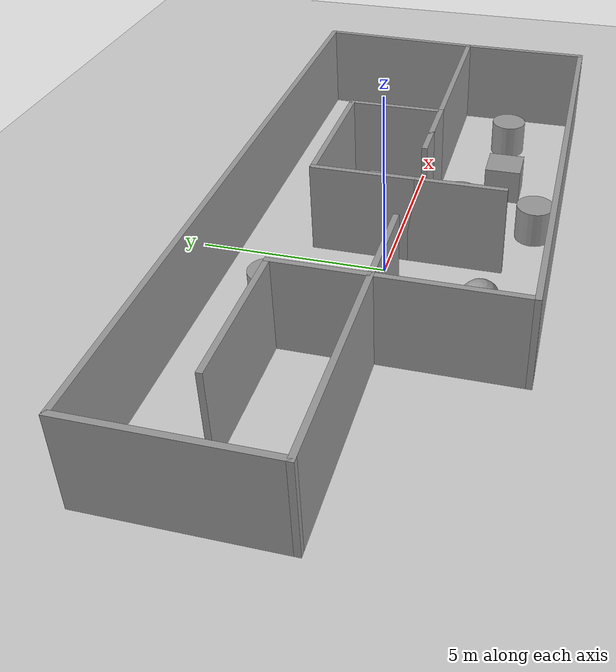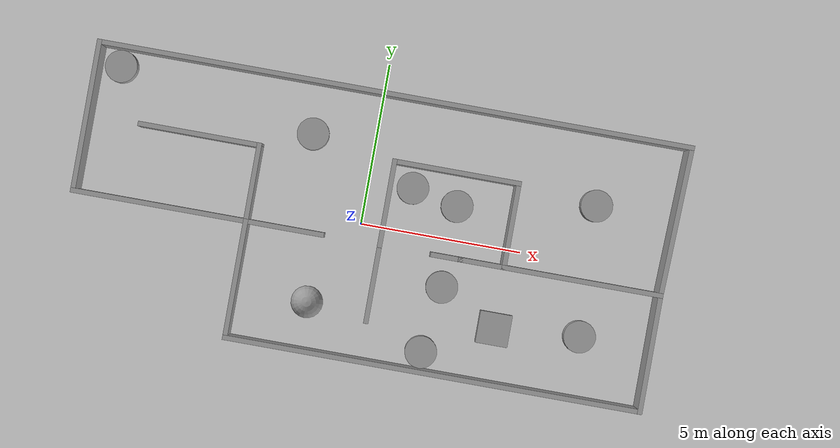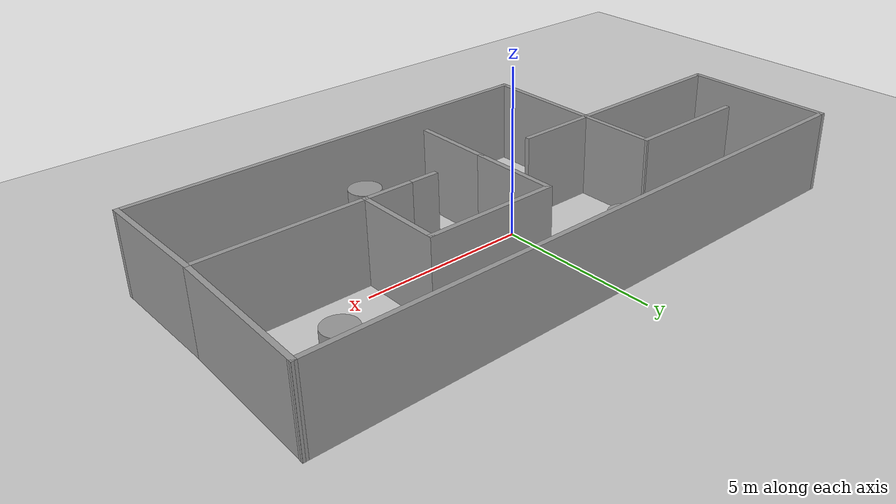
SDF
<sdf version="1.7">
 <world name="default">
  <light name="sun" type="directional">
   <pose>0 0 10 0 -0 0</pose>
   <diffuse>0.8 0.8 0.8 1</diffuse>
   <specular>0.2 0.2 0.2 1</specular>
   <attenuation>
    <range>1000</range>
    <constant>0.9</constant>
    <linear>0.01</linear>
    <quadratic>0.001</quadratic>
   </attenuation>
   <direction>-0.5 0.1 -0.9</direction>
   <spot><inner_angle>0</inner_angle><outer_angle>0</outer_angle><falloff>0</falloff></spot>
  </light>
  <model name="ground_plane">
   <static>1</static>
   <link name="link">
    <collision name="collision">
     <geometry><plane><normal>0 0 1</normal><size>100 100</size></plane></geometry>
     <surface><friction><ode><mu>100</mu><mu2>50</mu2></ode></friction></surface>
    </collision>
    <visual name="visual">
     <cast_shadows>0</cast_shadows>
     <geometry><plane><normal>0 0 1</normal><size>100 100</size></plane></geometry>
     <material>
      <script><uri>file://media/materials/scripts/gazebo.material</uri><name>Gazebo/Grey</name></script>
     </material>
    </visual>
   </link>
  </model>
  <gravity>0 0 -9.8</gravity>
  <magnetic_field>6e-06 2.3e-05 -4.2e-05</magnetic_field>
  <atmosphere type="adiabatic"/>
  <physics type="ode">
   <max_step_size>0.001</max_step_size>
   <real_time_factor>1</real_time_factor>
   <real_time_update_rate>1000</real_time_update_rate>
  </physics>
  <scene><ambient>0.4 0.4 0.4 1</ambient><background>0.7 0.7 0.7 1</background><shadows>1</shadows></scene>
  <audio><device>default</device></audio>
  <spherical_coordinates>
   <surface_model>EARTH_WGS84</surface_model>
   <latitude_deg>0</latitude_deg>
   <longitude_deg>0</longitude_deg>
   <elevation>0</elevation>
   <heading_deg>0</heading_deg>
  </spherical_coordinates>
  <model name="MapaSimulare">
   <pose>0.3499 -0.036899 0 0 -0 0</pose>
   <link name="Wall_0">
    <collision name="Wall_0_Collision">
     <geometry><box><size>2.75 0.15 2.5</size></box></geometry>
     <pose>0 0 1.25 0 -0 0</pose>
    </collision>
    <visual name="Wall_0_Visual">
     <pose>0 0 1.25 0 -0 0</pose>
     <geometry><box><size>2.75 0.15 2.5</size></box></geometry>
     <material>
      <script><uri>file://media/materials/scripts/gazebo.material</uri><name>Gazebo/Grey</name></script>
      <ambient>1 1 1 1</ambient>
     </material>
     <meta><layer>0</layer></meta>
    </visual>
    <pose>0.323798 0.798798 0 0 -0 1.5708</pose>
   </link>
   <link name="Wall_1">
    <collision name="Wall_1_Collision">
     <geometry><box><size>4 0.15 2.5</size></box></geometry>
     <pose>0 0 1.25 0 -0 0</pose>
    </collision>
    <visual name="Wall_1_Visual">
     <pose>0 0 1.25 0 -0 0</pose>
     <geometry><box><size>4 0.15 2.5</size></box></geometry>
     <material>
      <script><uri>file://media/materials/scripts/gazebo.material</uri><name>Gazebo/Grey</name></script>
      <ambient>1 1 1 1</ambient>
     </material>
     <meta><layer>0</layer></meta>
    </visual>
    <pose>2.2488 2.0988 0 0 -0 0</pose>
   </link>
   <link name="Wall_11">
    <collision name="Wall_11_Collision">
     <geometry><box><size>1.5 0.15 2.5</size></box></geometry>
     <pose>0 0 1.25 0 -0 0</pose>
    </collision>
    <visual name="Wall_11_Visual">
     <pose>0 0 1.25 0 -0 0</pose>
     <geometry><box><size>1.5 0.15 2.5</size></box></geometry>
     <material>
      <script><uri>file://media/materials/scripts/gazebo.material</uri><name>Gazebo/Grey</name></script>
      <ambient>1 1 1 1</ambient>
     </material>
     <meta><layer>0</layer></meta>
    </visual>
    <pose>3.4988 -0.501202 0 0 -0 3.14159</pose>
   </link>
   <link name="Wall_14">
    <collision name="Wall_14_Collision">
     <geometry><box><size>5 0.15 2.5</size></box></geometry>
     <pose>0 0 1.25 0 -0 0</pose>
    </collision>
    <visual name="Wall_14_Visual">
     <pose>0 0 1.25 0 -0 0</pose>
     <geometry><box><size>5 0.15 2.5</size></box></geometry>
     <material>
      <script><uri>file://media/materials/scripts/gazebo.material</uri><name>Gazebo/Grey</name></script>
      <ambient>1 1 1 1</ambient>
     </material>
     <meta><layer>0</layer></meta>
    </visual>
    <pose>6.5988 -0.501202 0 0 -0 0</pose>
   </link>
   <link name="Wall_15">
    <collision name="Wall_15_Collision">
     <geometry><box><size>3.75 0.15 2.5</size></box></geometry>
     <pose>0 0 1.25 0 -0 0</pose>
    </collision>
    <visual name="Wall_15_Visual">
     <pose>0 0 1.25 0 -0 0</pose>
     <geometry><box><size>3.75 0.15 2.5</size></box></geometry>
     <material>
      <script><uri>file://media/materials/scripts/gazebo.material</uri><name>Gazebo/Grey</name></script>
      <ambient>1 1 1 1</ambient>
     </material>
     <meta><layer>0</layer></meta>
    </visual>
    <pose>9.0238 -2.3012 0 0 -0 -1.5708</pose>
   </link>
   <link name="Wall_16">
    <collision name="Wall_16_Collision">
     <geometry><box><size>13 0.15 2.5</size></box></geometry>
     <pose>0 0 1.25 0 -0 0</pose>
    </collision>
    <visual name="Wall_16_Visual">
     <pose>0 0 1.25 0 -0 0</pose>
     <geometry><box><size>13 0.15 2.5</size></box></geometry>
     <material>
      <script><uri>file://media/materials/scripts/gazebo.material</uri><name>Gazebo/Grey</name></script>
      <ambient>1 1 1 1</ambient>
     </material>
     <meta><layer>0</layer></meta>
    </visual>
    <pose>2.5988 -4.1012 0 0 -0 3.14159</pose>
   </link>
   <link name="Wall_17">
    <collision name="Wall_17_Collision">
     <geometry><box><size>3.75 0.15 2.5</size></box></geometry>
     <pose>0 0 1.25 0 -0 0</pose>
    </collision>
    <visual name="Wall_17_Visual">
     <pose>0 0 1.25 0 -0 0</pose>
     <geometry><box><size>3.75 0.15 2.5</size></box></geometry>
     <material>
      <script><uri>file://media/materials/scripts/gazebo.material</uri><name>Gazebo/Grey</name></script>
      <ambient>1 1 1 1</ambient>
     </material>
     <meta><layer>0</layer></meta>
    </visual>
    <pose>-3.8262 -2.3012 0 0 -0 1.5708</pose>
   </link>
   <link name="Wall_18">
    <collision name="Wall_18_Collision">
     <geometry><box><size>5.5 0.15 2.5</size></box></geometry>
     <pose>0 0 1.25 0 -0 0</pose>
    </collision>
    <visual name="Wall_18_Visual">
     <pose>0 0 1.25 0 -0 0</pose>
     <geometry><box><size>5.5 0.15 2.5</size></box></geometry>
     <material>
      <script><uri>file://media/materials/scripts/gazebo.material</uri><name>Gazebo/Grey</name></script>
      <ambient>1 1 1 1</ambient>
     </material>
     <meta><layer>0</layer></meta>
    </visual>
    <pose>-6.5012 -0.501202 0 0 -0 3.14159</pose>
   </link>
   <link name="Wall_19">
    <collision name="Wall_19_Collision">
     <geometry><box><size>4.75 0.15 2.5</size></box></geometry>
     <pose>0 0 1.25 0 -0 0</pose>
    </collision>
    <visual name="Wall_19_Visual">
     <pose>0 0 1.25 0 -0 0</pose>
     <geometry><box><size>4.75 0.15 2.5</size></box></geometry>
     <material>
      <script><uri>file://media/materials/scripts/gazebo.material</uri><name>Gazebo/Grey</name></script>
      <ambient>1 1 1 1</ambient>
     </material>
     <meta><layer>0</layer></meta>
    </visual>
    <pose>-9.1762 1.7988 0 0 -0 1.5708</pose>
   </link>
   <link name="Wall_2">
    <collision name="Wall_2_Collision">
     <geometry><box><size>2.75 0.15 2.5</size></box></geometry>
     <pose>0 0 1.25 0 -0 0</pose>
    </collision>
    <visual name="Wall_2_Visual">
     <pose>0 0 1.25 0 -0 0</pose>
     <geometry><box><size>2.75 0.15 2.5</size></box></geometry>
     <material>
      <script><uri>file://media/materials/scripts/gazebo.material</uri><name>Gazebo/Grey</name></script>
      <ambient>1 1 1 1</ambient>
     </material>
     <meta><layer>0</layer></meta>
    </visual>
    <pose>4.1738 0.798798 0 0 -0 -1.5708</pose>
   </link>
   <link name="Wall_20">
    <collision name="Wall_20_Collision">
     <geometry><box><size>18.5 0.15 2.5</size></box></geometry>
     <pose>0 0 1.25 0 -0 0</pose>
    </collision>
    <visual name="Wall_20_Visual">
     <pose>0 0 1.25 0 -0 0</pose>
     <geometry><box><size>18.5 0.15 2.5</size></box></geometry>
     <material>
      <script><uri>file://media/materials/scripts/gazebo.material</uri><name>Gazebo/Grey</name></script>
      <ambient>1 1 1 1</ambient>
     </material>
     <meta><layer>0</layer></meta>
    </visual>
    <pose>-0.001202 4.0988 0 0 -0 0</pose>
   </link>
   <link name="Wall_21">
    <collision name="Wall_21_Collision">
     <geometry><box><size>4.75244 0.15 2.5</size></box></geometry>
     <pose>0 0 1.25 0 -0 0</pose>
    </collision>
    <visual name="Wall_21_Visual">
     <pose>0 0 1.25 0 -0 0</pose>
     <geometry><box><size>4.75244 0.15 2.5</size></box></geometry>
     <material>
      <script><uri>file://media/materials/scripts/gazebo.material</uri><name>Gazebo/Grey</name></script>
      <ambient>1 1 1 1</ambient>
     </material>
     <meta><layer>0</layer></meta>
    </visual>
    <pose>9.0988 1.7988 0 0 -0 -1.60339</pose>
   </link>
   <link name="Wall_23">
    <collision name="Wall_23_Collision">
     <geometry><box><size>2.5 0.15 2.5</size></box></geometry>
     <pose>0 0 1.25 0 -0 0</pose>
    </collision>
    <visual name="Wall_23_Visual">
     <pose>0 0 1.25 0 -0 0</pose>
     <geometry><box><size>2.5 0.15 2.5</size></box></geometry>
     <material>
      <script><uri>file://media/materials/scripts/gazebo.material</uri><name>Gazebo/Grey</name></script>
      <ambient>1 1 1 1</ambient>
     </material>
     <meta><layer>0</layer></meta>
    </visual>
    <pose>-3.8262 0.673798 0 0 -0 1.5708</pose>
   </link>
   <link name="Wall_25">
    <collision name="Wall_25_Collision">
     <geometry><box><size>2.5 0.15 2.5</size></box></geometry>
     <pose>0 0 1.25 0 -0 0</pose>
    </collision>
    <visual name="Wall_25_Visual">
     <pose>0 0 1.25 0 -0 0</pose>
     <geometry><box><size>2.5 0.15 2.5</size></box></geometry>
     <material>
      <script><uri>file://media/materials/scripts/gazebo.material</uri><name>Gazebo/Grey</name></script>
      <ambient>1 1 1 1</ambient>
     </material>
     <meta><layer>0</layer></meta>
    </visual>
    <pose>-2.6512 -0.501202 0 0 -0 0</pose>
   </link>
   <link name="Wall_27">
    <collision name="Wall_27_Collision">
     <geometry><box><size>2.5 0.15 2.5</size></box></geometry>
     <pose>0 0 1.25 0 -0 0</pose>
    </collision>
    <visual name="Wall_27_Visual">
     <pose>0 0 1.25 0 -0 0</pose>
     <geometry><box><size>2.5 0.15 2.5</size></box></geometry>
     <material>
      <script><uri>file://media/materials/scripts/gazebo.material</uri><name>Gazebo/Grey</name></script>
      <ambient>1 1 1 1</ambient>
     </material>
     <meta><layer>0</layer></meta>
    </visual>
    <pose>0.323798 -1.6762 0 0 -0 -1.5708</pose>
   </link>
   <link name="Wall_29">
    <collision name="Wall_29_Collision">
     <geometry><box><size>1 0.15 2.5</size></box></geometry>
     <pose>0 0 1.25 0 -0 0</pose>
    </collision>
    <visual name="Wall_29_Visual">
     <pose>0 0 1.25 0 -0 0</pose>
     <geometry><box><size>1 0.15 2.5</size></box></geometry>
     <material>
      <script><uri>file://media/materials/scripts/gazebo.material</uri><name>Gazebo/Grey</name></script>
      <ambient>1 1 1 1</ambient>
     </material>
     <meta><layer>0</layer></meta>
    </visual>
    <pose>2.3988 -0.501202 0 0 -0 3.14159</pose>
   </link>
   <link name="Wall_32">
    <collision name="Wall_32_Collision">
     <geometry><box><size>3.83152 0.15 2.5</size></box></geometry>
     <pose>0 0 1.25 0 -0 0</pose>
    </collision>
    <visual name="Wall_32_Visual">
     <pose>0 0 1.25 0 -0 0</pose>
     <geometry><box><size>3.83152 0.15 2.5</size></box></geometry>
     <material>
      <script><uri>file://media/materials/scripts/gazebo.material</uri><name>Gazebo/Grey</name></script>
      <ambient>1 1 1 1</ambient>
     </material>
     <meta><layer>0</layer></meta>
    </visual>
    <pose>-5.66696 1.85101 0 0 -0 -0.001199</pose>
   </link>
   <static>1</static>
  </model>
  <model name="unit_cylinder">
   <pose>-1.94958 2.46951 0.499997 4e-06 4e-06 -0</pose>
   <link name="link">
    <inertial>
     <mass>1</mass>
     <inertia><ixx>0.145833</ixx><ixy>0</ixy><ixz>0</ixz><iyy>0.145833</iyy><iyz>0</iyz><izz>0.125</izz></inertia>
    </inertial>
    <collision name="collision">
     <geometry><cylinder><radius>0.5</radius><length>1</length></cylinder></geometry>
    </collision>
    <visual name="visual">
     <geometry><cylinder><radius>0.5</radius><length>1</length></cylinder></geometry>
     <material>
      <script><name>Gazebo/Grey</name><uri>file://media/materials/scripts/gazebo.material</uri></script>
     </material>
    </visual>
   </link>
  </model>
  <model name="unit_sphere">
   <pose>-1.23428 -2.66668 0.5 0 -0 0</pose>
   <link name="link">
    <inertial>
     <mass>1</mass>
     <inertia><ixx>0.1</ixx><ixy>0</ixy><ixz>0</ixz><iyy>0.1</iyy><iyz>0</iyz><izz>0.1</izz></inertia>
    </inertial>
    <collision name="collision"><geometry><sphere><radius>0.5</radius></sphere></geometry></collision>
    <visual name="visual">
     <geometry><sphere><radius>0.5</radius></sphere></geometry>
     <material>
      <script><name>Gazebo/Grey</name><uri>file://media/materials/scripts/gazebo.material</uri></script>
     </material>
    </visual>
   </link>
  </model>
  <model name="unit_box">
   <pose>4.59484 -2.4655 0.499995 1e-05 -0 0</pose>
   <link name="link">
    <inertial>
     <mass>1</mass>
     <inertia>
      <ixx>0.166667</ixx>
      <ixy>0</ixy>
      <ixz>0</ixz>
      <iyy>0.166667</iyy>
      <iyz>0</iyz>
      <izz>0.166667</izz>
     </inertia>
    </inertial>
    <collision name="collision"><geometry><box><size>1 1 1</size></box></geometry></collision>
    <visual name="visual">
     <geometry><box><size>1 1 1</size></box></geometry>
     <material>
      <script><name>Gazebo/Grey</name><uri>file://media/materials/scripts/gazebo.material</uri></script>
     </material>
    </visual>
   </link>
  </model>
  <light name="user_directional_light_0" type="directional">
   <pose>-1.188 0.834103 1 0 -0 0</pose>
   <diffuse>0.5 0.5 0.5 1</diffuse>
   <specular>0.1 0.1 0.1 1</specular>
   <direction>0.1 0.1 -0.9</direction>
   <attenuation>
    <range>20</range>
    <constant>0.5</constant>
    <linear>0.01</linear>
    <quadratic>0.001</quadratic>
   </attenuation>
   <spot><inner_angle>0</inner_angle><outer_angle>0</outer_angle><falloff>0</falloff></spot>
  </light>
  <model name="unit_cylinder_0">
   <pose>7.23629 -2.24087 0.499994 -3e-06 -2e-06 0</pose>
   <link name="link">
    <inertial>
     <mass>1</mass>
     <inertia><ixx>0.145833</ixx><ixy>0</ixy><ixz>0</ixz><iyy>0.145833</iyy><iyz>0</iyz><izz>0.125</izz></inertia>
    </inertial>
    <collision name="collision">
     <geometry><cylinder><radius>0.5</radius><length>1</length></cylinder></geometry>
    </collision>
    <visual name="visual">
     <geometry><cylinder><radius>0.5</radius><length>1</length></cylinder></geometry>
     <material>
      <script><name>Gazebo/Grey</name><uri>file://media/materials/scripts/gazebo.material</uri></script>
     </material>
    </visual>
   </link>
  </model>
  <model name="unit_cylinder_1">
   <pose>7.04528 1.82468 0.499996 4e-06 4e-06 -0</pose>
   <link name="link">
    <inertial>
     <mass>1</mass>
     <inertia><ixx>0.145833</ixx><ixy>0</ixy><ixz>0</ixz><iyy>0.145833</iyy><iyz>0</iyz><izz>0.125</izz></inertia>
    </inertial>
    <collision name="collision">
     <geometry><cylinder><radius>0.5</radius><length>1</length></cylinder></geometry>
    </collision>
    <visual name="visual">
     <geometry><cylinder><radius>0.5</radius><length>1</length></cylinder></geometry>
     <material>
      <script><name>Gazebo/Grey</name><uri>file://media/materials/scripts/gazebo.material</uri></script>
     </material>
    </visual>
   </link>
  </model>
  <model name="unit_cylinder_2">
   <pose>-8.13601 3.47201 0.499997 3e-06 2e-06 0</pose>
   <link name="link">
    <inertial>
     <mass>1</mass>
     <inertia><ixx>0.145833</ixx><ixy>0</ixy><ixz>0</ixz><iyy>0.145833</iyy><iyz>0</iyz><izz>0.125</izz></inertia>
    </inertial>
    <collision name="collision">
     <geometry><cylinder><radius>0.5</radius><length>1</length></cylinder></geometry>
    </collision>
    <visual name="visual">
     <geometry><cylinder><radius>0.5</radius><length>1</length></cylinder></geometry>
     <material>
      <script><name>Gazebo/Grey</name><uri>file://media/materials/scripts/gazebo.material</uri></script>
     </material>
    </visual>
   </link>
  </model>
  <model name="unit_cylinder_3">
   <pose>2.78812 -1.48234 0.499997 4e-06 3e-06 -0</pose>
   <link name="link">
    <inertial>
     <mass>1</mass>
     <inertia><ixx>0.145833</ixx><ixy>0</ixy><ixz>0</ixz><iyy>0.145833</iyy><iyz>0</iyz><izz>0.125</izz></inertia>
    </inertial>
    <collision name="collision">
     <geometry><cylinder><radius>0.5</radius><length>1</length></cylinder></geometry>
    </collision>
    <visual name="visual">
     <geometry><cylinder><radius>0.5</radius><length>1</length></cylinder></geometry>
     <material>
      <script><name>Gazebo/Grey</name><uri>file://media/materials/scripts/gazebo.material</uri></script>
     </material>
    </visual>
   </link>
  </model>
  <model name="unit_cylinder_4">
   <pose>2.50205 -3.56309 0.499999 0 -0 0</pose>
   <link name="link">
    <inertial>
     <mass>1</mass>
     <inertia><ixx>0.145833</ixx><ixy>0</ixy><ixz>0</ixz><iyy>0.145833</iyy><iyz>0</iyz><izz>0.125</izz></inertia>
    </inertial>
    <collision name="collision">
     <geometry><cylinder><radius>0.5</radius><length>1</length></cylinder></geometry>
    </collision>
    <visual name="visual">
     <geometry><cylinder><radius>0.5</radius><length>1</length></cylinder></geometry>
     <material>
      <script><name>Gazebo/Grey</name><uri>file://media/materials/scripts/gazebo.material</uri></script>
     </material>
    </visual>
   </link>
  </model>
  <model name="unit_cylinder_5">
   <pose>1.3734 1.36406 0.499998 3e-06 -2e-06 0</pose>
   <link name="link">
    <inertial>
     <mass>1</mass>
     <inertia><ixx>0.145833</ixx><ixy>0</ixy><ixz>0</ixz><iyy>0.145833</iyy><iyz>0</iyz><izz>0.125</izz></inertia>
    </inertial>
    <collision name="collision">
     <geometry><cylinder><radius>0.5</radius><length>1</length></cylinder></geometry>
    </collision>
    <visual name="visual">
     <geometry><cylinder><radius>0.5</radius><length>1</length></cylinder></geometry>
     <material>
      <script><name>Gazebo/Grey</name><uri>file://media/materials/scripts/gazebo.material</uri></script>
     </material>
    </visual>
   </link>
  </model>
  <model name="unit_cylinder_6">
   <pose>2.81467 1.05174 0.499992 -3e-06 2e-06 0</pose>
   <link name="link">
    <inertial>
     <mass>1</mass>
     <inertia><ixx>0.145833</ixx><ixy>0</ixy><ixz>0</ixz><iyy>0.145833</iyy><iyz>0</iyz><izz>0.125</izz></inertia>
    </inertial>
    <collision name="collision">
     <geometry><cylinder><radius>0.5</radius><length>1</length></cylinder></geometry>
    </collision>
    <visual name="visual">
     <geometry><cylinder><radius>0.5</radius><length>1</length></cylinder></geometry>
     <material>
      <script><name>Gazebo/Grey</name><uri>file://media/materials/scripts/gazebo.material</uri></script>
     </material>
    </visual>
   </link>
  </model>
 </world>
</sdf>
